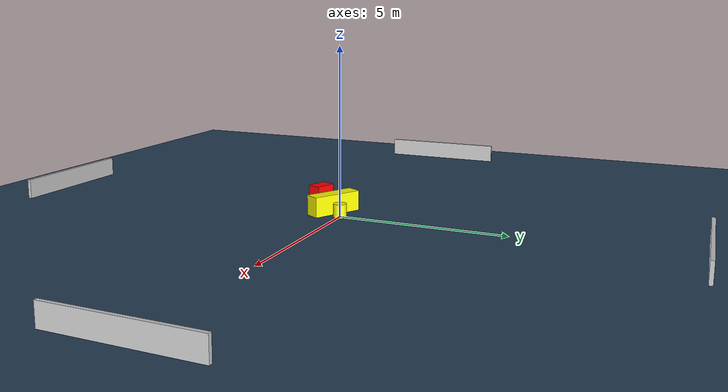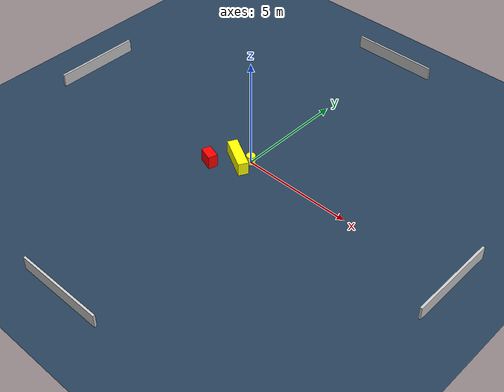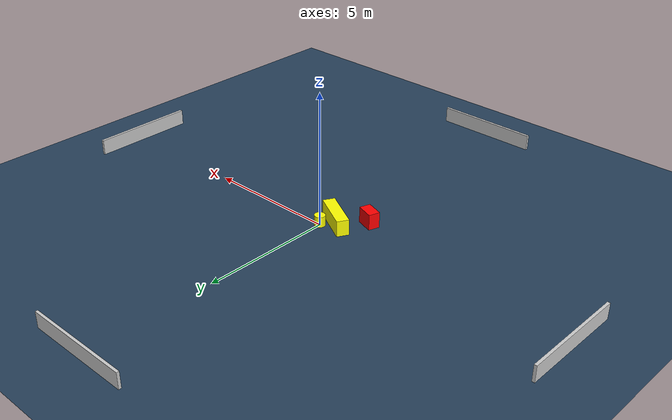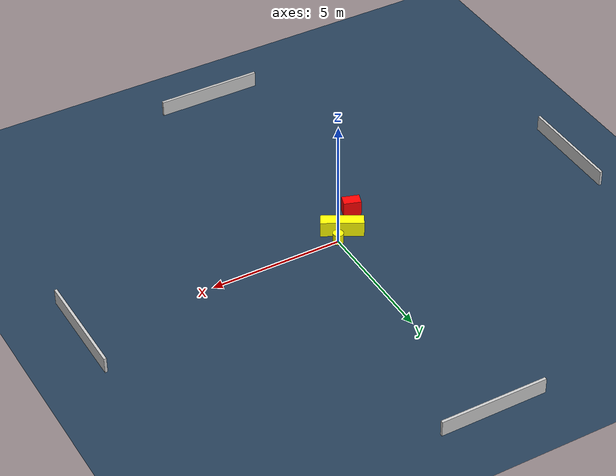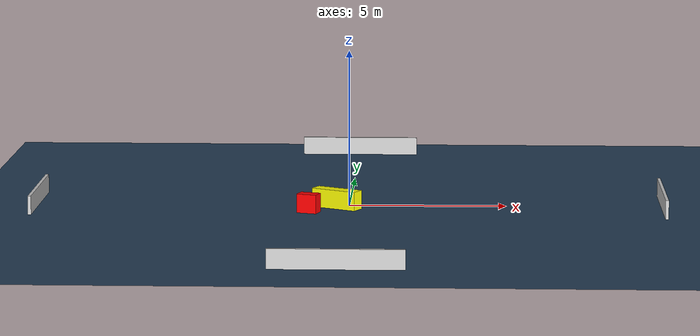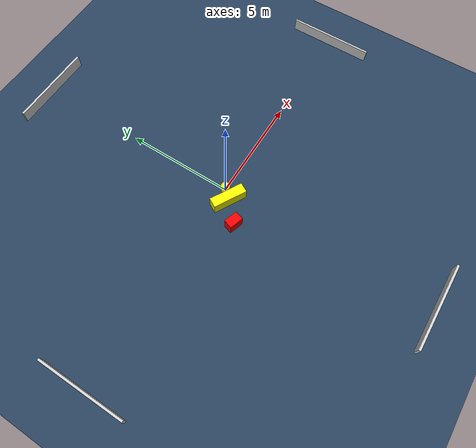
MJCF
<?xml version="1.0" ?>
<mujoco model="generated_environment">
  <option timestep="0.01" integrator="RK4" cone="elliptic"/>
  <default>
    <geom density="1"/>
  </default>
  <asset>
    <texture builtin="gradient" height="3072" name="skybox" rgb1="0.3 0.5 0.7" rgb2="0 0 0" type="skybox" width="512"/>
    <texture builtin="checker" height="300" name="groundplane" rgb1="0.2 0.3 0.4" rgb2="0.1 0.2 0.3" type="2d" width="300"/>
    <material name="groundplane" reflectance="0.2" texrepeat="5 5" texture="groundplane"/>
  </asset>
  <worldbody>
    <light dir="0 0 -1" directional="true" pos="0 0 1.5"/>
    <geom condim="3" friction="0.5 0.005 0.001" material="groundplane" name="floor" pos="0 0 0" size="0 0 0.05" type="plane"/>
    <body name="walls">
      <geom name="wall_1" condim="4" pos="-10.0 0.0 0.3" rgba="0.800000011920929 0.800000011920929 0.800000011920929 1.0" size="0.05 2.0 0.3" type="box"/>
      <geom name="wall_2" condim="4" pos="10.0 0.0 0.3" rgba="0.800000011920929 0.800000011920929 0.800000011920929 1.0" size="0.05 2.0 0.3" type="box"/>
      <geom name="wall_3" condim="4" pos="0.0 -10.0 0.3" rgba="0.800000011920929 0.800000011920929 0.800000011920929 1.0" size="2.0 0.05 0.3" type="box"/>
      <geom name="wall_4" condim="4" pos="0.0 10.0 0.3" rgba="0.800000011920929 0.800000011920929 0.800000011920929 1.0" size="2.0 0.05 0.3" type="box"/>
    </body>
    <body name="robot">
      <joint name="joint_x" type="slide" pos="0 0 0" axis="1 0 0"/>
      <joint name="joint_y" type="slide" pos="0 0 0" axis="0 1 0"/>
      <geom name="robot" type="cylinder" pos="0.0 0.0 0.2" size="0.2 0.2 0.0" mass="5.0" friction="1.0 0.005 0.0001" condim="4" rgba="1.0 1.0 0.0 1.0"/>
    </body>
    <body name="obstacle_1_movable">
      <geom name="obstacle_1_movable" condim="4" pos="-0.3904989948912809 -0.3887273045324247 0.3" euler="0 0 240.9675158420638" friction="0.0 0.005 0.001" rgba="1.0 1.0 0.0 1.0" size="0.2277568160562605 0.7876346466660595 0.3" type="box" mass="0.1"/>
      <joint type="free"/>
    </body>
    <body name="obstacle_2_static">
      <geom name="obstacle_2_static" condim="4" pos="-1.2449540673072275 -1.1993297660681383 0.3" euler="0 0 251.71444100794676" friction="0.0 0.005 0.001" rgba="1.0 0.0 0.0 1.0" size="0.21163073573956193 0.3264979715076072 0.3" type="box"/>
    </body>
  </worldbody>
  <actuator>
    <motor name="actuator_x" joint="joint_x" gear="1" ctrlrange="-1 1"/>
    <motor name="actuator_y" joint="joint_y" gear="1" ctrlrange="-1 1"/>
  </actuator>
</mujoco>
